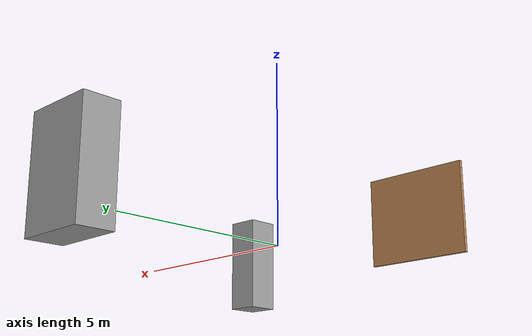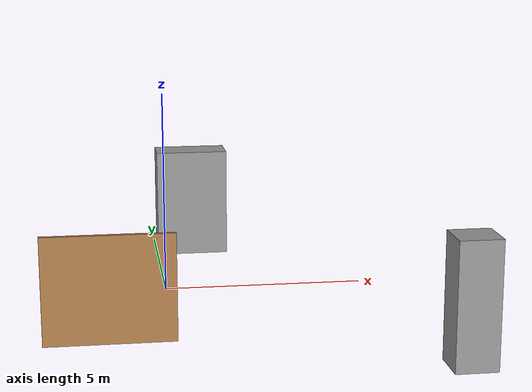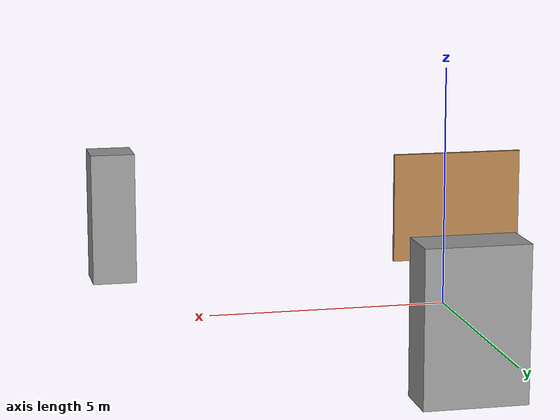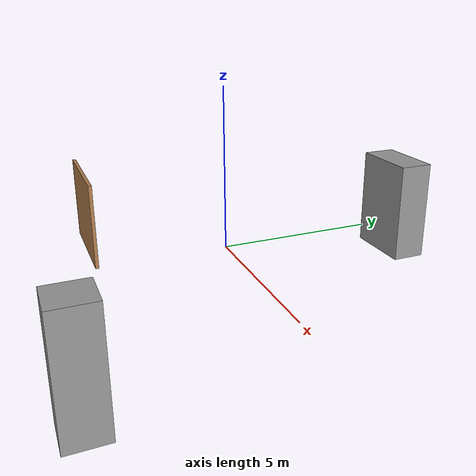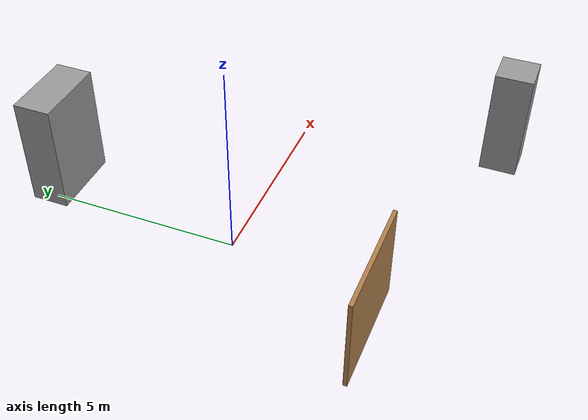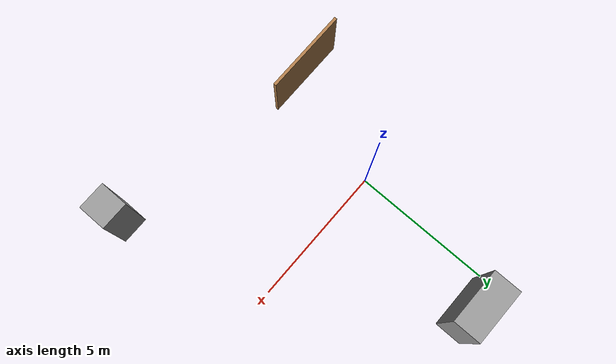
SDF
<?xml version='1.0'?>
<sdf version='1.7'>
  <model name='assymetric_room'>
    <link name='link_0'>
      <inertial>
        <mass>1</mass>
        <inertia>
          <ixx>0.166667</ixx>
          <ixy>0</ixy>
          <ixz>0</ixz>
          <iyy>0.166667</iyy>
          <iyz>0</iyz>
          <izz>0.166667</izz>
        </inertia>
        <pose>0 0 0 0 -0 0</pose>
      </inertial>
      <pose>6.3879 -5.37353 1.07438 0 -0 0</pose>
      <gravity>1</gravity>
      <self_collide>0</self_collide>
      <kinematic>0</kinematic>
      <enable_wind>0</enable_wind>
      <visual name='visual'>
        <pose>0 0 0 0 -0 0</pose>
        <geometry>
          <box>
            <size>1 1 3</size>
          </box>
        </geometry>
        <material>
          <lighting>1</lighting>
          <script>
            <uri>file://media/materials/scripts/gazebo.material</uri>
            <name>Gazebo/Grey</name>
          </script>
          <shader type='pixel'>
            <normal_map>__default__</normal_map>
          </shader>
          <ambient>0.3 0.3 0.3 1</ambient>
          <diffuse>0.7 0.7 0.7 1</diffuse>
          <specular>0.01 0.01 0.01 1</specular>
          <emissive>0 0 0 1</emissive>
        </material>
        <transparency>0</transparency>
        <cast_shadows>1</cast_shadows>
      </visual>
      <collision name='collision'>
        <laser_retro>0</laser_retro>
        <max_contacts>10</max_contacts>
        <pose>0 0 0 0 -0 0</pose>
        <geometry>
          <box>
            <size>1 1 1</size>
          </box>
        </geometry>
        <surface>
          <friction>
            <ode>
              <mu>1</mu>
              <mu2>1</mu2>
              <fdir1>0 0 0</fdir1>
              <slip1>0</slip1>
              <slip2>0</slip2>
            </ode>
            <torsional>
              <coefficient>1</coefficient>
              <patch_radius>0</patch_radius>
              <surface_radius>0</surface_radius>
              <use_patch_radius>1</use_patch_radius>
              <ode>
                <slip>0</slip>
              </ode>
            </torsional>
          </friction>
          <bounce>
            <restitution_coefficient>0</restitution_coefficient>
            <threshold>1e+06</threshold>
          </bounce>
          <contact>
            <collide_without_contact>0</collide_without_contact>
            <collide_without_contact_bitmask>1</collide_without_contact_bitmask>
            <collide_bitmask>1</collide_bitmask>
            <ode>
              <soft_cfm>0</soft_cfm>
              <soft_erp>0.2</soft_erp>
              <kp>1e+13</kp>
              <kd>1</kd>
              <max_vel>0.01</max_vel>
              <min_depth>0</min_depth>
            </ode>
            <bullet>
              <split_impulse>1</split_impulse>
              <split_impulse_penetration_threshold>-0.01</split_impulse_penetration_threshold>
              <soft_cfm>0</soft_cfm>
              <soft_erp>0.2</soft_erp>
              <kp>1e+13</kp>
              <kd>1</kd>
            </bullet>
          </contact>
        </surface>
      </collision>
    </link>
    <link name='link_0_clone'>
      <inertial>
        <mass>1</mass>
        <inertia>
          <ixx>0.166667</ixx>
          <ixy>0</ixy>
          <ixz>0</ixz>
          <iyy>0.166667</iyy>
          <iyz>0</iyz>
          <izz>0.166667</izz>
        </inertia>
        <pose>0 0 0 0 -0 0</pose>
      </inertial>
      <pose>1.11199 5.39894 1.07438 0 -0 0</pose>
      <gravity>1</gravity>
      <self_collide>0</self_collide>
      <kinematic>0</kinematic>
      <enable_wind>0</enable_wind>
      <visual name='visual'>
        <pose>0 0 0 0 -0 0</pose>
        <geometry>
          <box>
            <size>2 1 3</size>
          </box>
        </geometry>
        <material>
          <lighting>1</lighting>
          <script>
            <uri>file://media/materials/scripts/gazebo.material</uri>
            <name>Gazebo/Grey</name>
          </script>
          <shader type='pixel'>
            <normal_map>__default__</normal_map>
          </shader>
          <ambient>0.3 0.3 0.3 1</ambient>
          <diffuse>0.7 0.7 0.7 1</diffuse>
          <specular>0.01 0.01 0.01 1</specular>
          <emissive>0 0 0 1</emissive>
        </material>
        <transparency>0</transparency>
        <cast_shadows>1</cast_shadows>
      </visual>
      <collision name='collision'>
        <laser_retro>0</laser_retro>
        <max_contacts>10</max_contacts>
        <pose>0 0 0 0 -0 0</pose>
        <geometry>
          <box>
            <size>1 1 1</size>
          </box>
        </geometry>
        <surface>
          <friction>
            <ode>
              <mu>1</mu>
              <mu2>1</mu2>
              <fdir1>0 0 0</fdir1>
              <slip1>0</slip1>
              <slip2>0</slip2>
            </ode>
            <torsional>
              <coefficient>1</coefficient>
              <patch_radius>0</patch_radius>
              <surface_radius>0</surface_radius>
              <use_patch_radius>1</use_patch_radius>
              <ode>
                <slip>0</slip>
              </ode>
            </torsional>
          </friction>
          <bounce>
            <restitution_coefficient>0</restitution_coefficient>
            <threshold>1e+06</threshold>
          </bounce>
          <contact>
            <collide_without_contact>0</collide_without_contact>
            <collide_without_contact_bitmask>1</collide_without_contact_bitmask>
            <collide_bitmask>1</collide_bitmask>
            <ode>
              <soft_cfm>0</soft_cfm>
              <soft_erp>0.2</soft_erp>
              <kp>1e+13</kp>
              <kd>1</kd>
              <max_vel>0.01</max_vel>
              <min_depth>0</min_depth>
            </ode>
            <bullet>
              <split_impulse>1</split_impulse>
              <split_impulse_penetration_threshold>-0.01</split_impulse_penetration_threshold>
              <soft_cfm>0</soft_cfm>
              <soft_erp>0.2</soft_erp>
              <kp>1e+13</kp>
              <kd>1</kd>
            </bullet>
          </contact>
        </surface>
      </collision>
    </link>
    <model name='single_wall'>
      <pose>-1.48475 -2.75448 -2e-06 0 -0 0</pose>
      <link name='Wall_0'>
        <collision name='Wall_0_Collision'>
          <geometry>
            <box>
              <size>3 0.1 2.5</size>
            </box>
          </geometry>
          <pose>0 0 1.25 0 -0 0</pose>
        </collision>
        <visual name='Wall_0_Visual'>
          <pose>0 0 1.25 0 -0 0</pose>
          <geometry>
            <box>
              <size>3 0.1 2.5</size>
            </box>
          </geometry>
          <material>
            <script>
              <uri>file://media/materials/scripts/gazebo.material</uri>
              <name>Gazebo/Wood</name>
            </script>
            <ambient>1 1 1 1</ambient>
          </material>
          <meta>
            <layer>0</layer>
          </meta>
        </visual>
        <pose>0 -1.22 0 0 -0 0</pose>
      </link>
      <static>1</static>
    </model>
    <static>0</static>
    <allow_auto_disable>1</allow_auto_disable>
  </model>
</sdf>
